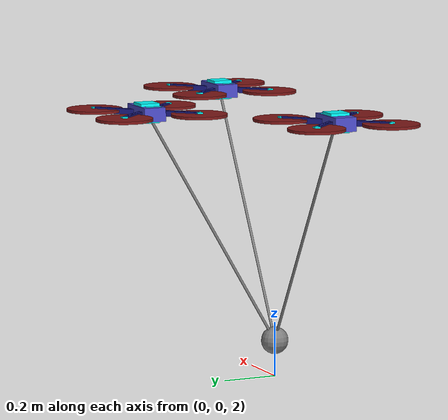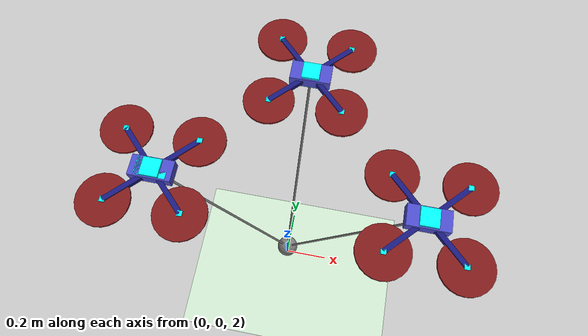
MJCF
<?xml version="1.0"?>
<mujoco model="MultiQuadPayload">
	<option	timestep="0.01" gravity="0 0 -9.81" wind="0 0 0" density="1" viscosity="1e-5" />
  <compiler angle="degree" coordinate="local" inertiafromgeom="false" />
  <visual>
    <map fogstart="3.0" fogend="5.0" force="0.1" znear="0.1" />
  </visual>
  <asset>
    <texture type="skybox" builtin="gradient" rgb1="1.0 1.0 1.0" rgb2="0.6 0.8 1.0" width="256" height="256" />
  </asset>
  <worldbody>
    <geom name="ground" type="plane" size="5.0 5.0 0.02" friction="1.0" pos="0.0 0.0 0.0" rgba="0.8 0.9 0.8 1.0" />
    <light directional="true" diffuse=".9 .9 .9" specular=".3 .3 .3" pos="0 0 4.0" dir="0 0.15 -1" />
    <body name="quadrotor0" pos="-0.5 0.0 3.0" quat="1 0 0 0">
      <inertial pos="0. 0. 0." mass="0.75" diaginertia="0.0053 0.0049 0.0098" />
      <geom name="quad0_geom" type="box" pos="0.0 0.0 0.0" quat="1 0 0 0" size="0.08 0.04 0.025"
        rgba="0.3 0.3 0.8 1.0" />
      <site name="quad0_end1" pos="0.0 0 0.0" type="sphere" size="0.01" />
      <joint name="quad0_root_joint" type="free" limited="false" pos="0.0 0.0 0.0" axis="0.0 0.0 1.0"
        range="-1.0 1.0" armature="0.0" damping="0.0" stiffness="0.0" />

      <geom name="quad0_rotor_arm_geom_0" type="box" pos="0.0 0.0 0.0" quat="0.92388 0 0 0.382683"
        size="0.2 0.01 0.01" rgba="0.1 0.1 0.5 1.0" />
      <geom name="quad0_rotor_prop_geom_0" type="cylinder" size="0.1 0.005"
        pos="0.1414213562373095 0.14142135623730953 0.0" rgba="0.5 0.1 0.1 1.0" />

      <geom name="quad0_rotor_arm_geom_1" type="box" pos="0.0 0.0 0.0" quat="0.382683 0 0 0.92388"
        size="0.2 0.01 0.01" rgba="0.1 0.1 0.5 1.0" />
      <geom name="quad0_rotor_prop_geom_1" type="cylinder" size="0.1 0.005"
        pos="-0.1414213562373095 0.14142135623730953 0.0" rgba="0.5 0.1 0.1 1.0" />

      <geom name="quad0_rotor_arm_geom_2" type="box" pos="0.0 0.0 0.0" quat="-0.382683 0 0 0.92388"
        size="0.2 0.01 0.01" rgba="0.1 0.1 0.5 1.0" />
      <geom name="quad0_rotor_prop_geom_2" type="cylinder" size="0.1 0.005"
        pos="-0.1414213562373095 -0.1414213562373095 0.0" rgba="0.5 0.1 0.1 1.0" />

      <geom name="quad0_rotor_arm_geom_3" type="box" pos="0.0 0.0 0.0" quat="-0.92388 0 0 0.382683"
        size="0.2 0.01 0.01" rgba="0.1 0.1 0.5 1.0" />
      <geom name="quad0_rotor_prop_geom_3" type="cylinder" size="0.1 0.005"
        pos="0.1414213562373095 -0.14142135623730953 0.0" rgba="0.5 0.1 0.1 1.0" />

      <site name="quad0_site0" type="box" pos="0.1414213562373095 0.14142135623730953 0.0" quat="1 0 0 0"
        size="0.01 0.01 0.01" rgba="0.0 1 1 1.0" />
      <site name="quad0_site1" type="box" pos="-0.1414213562373095 0.14142135623730953 0.0" quat="1 0 0 0"
        size="0.01 0.01 0.01" rgba="0.0 1 1 1.0" />
      <site name="quad0_site2" type="box" pos="-0.1414213562373095 -0.1414213562373095 0.0" quat="1 0 0 0"
        size="0.01 0.01 0.01" rgba="0.0 1 1 1.0" />
      <site name="quad0_site3" type="box" pos="0.14142135623730948 -0.14142135623730956 0.0"
        quat="1 0 0 0" size="0.01 0.01 0.01" rgba="0.0 1 1 1.0" />
      <site name="quad0_thrust" type="box" pos="0.0 0.0 0.0" quat="1 0 0 0"
        size="0.035 0.035 0.035" rgba="0.0 1 1 1.0" />
      <site name="quad0_Mx" type="box" pos="0.0 0.0 0.0" quat="1 0 0 0" size="0.06 0.035 0.025"
        rgba="0.0 1 1 1.0" />
      <site name="quad0_My" type="box" pos="0.0 0.0 0.0" quat="1 0 0 0" size="0.06 0.035 0.025"
        rgba="0.0 1 1 1.0" />
      <site name="quad0_Mz" type="box" pos="0.0 0.0 0.0" quat="1 0 0 0" size="0.06 0.035 0.025"
        rgba="0.0 1 1 1.0" />
    </body>
    <body name="quadrotor1" pos="0.5 0.0 3.0" quat="1 0 0 0">
      <inertial pos="0. 0. 0." mass="0.75" diaginertia="0.0053 0.0049 0.0098" />
      <geom name="quad1_geom" type="box" pos="0.0 0.0 0.0" quat="1 0 0 0" size="0.08 0.04 0.025"
        rgba="0.3 0.3 0.8 1.0" />
      <site name="quad1_end1" pos="0.0 0 0.0" type="sphere" size="0.01" />
      <joint name="quad1_root_joint" type="free" limited="false" pos="0.0 0.0 0.0" axis="0.0 0.0 1.0"
        range="-1.0 1.0" armature="0.0" damping="0.0" stiffness="0.0" />

      <geom name="quad1_rotor_arm_geom_0" type="box" pos="0.0 0.0 0.0" quat="0.92388 0 0 0.382683"
        size="0.2 0.01 0.01" rgba="0.1 0.1 0.5 1.0" />
      <geom name="quad1_rotor_prop_geom_0" type="cylinder" size="0.1 0.005"
        pos="0.1414213562373095 0.14142135623730953 0.0" rgba="0.5 0.1 0.1 1.0" />

      <geom name="quad1_rotor_arm_geom_1" type="box" pos="0.0 0.0 0.0" quat="0.382683 0 0 0.92388"
        size="0.2 0.01 0.01" rgba="0.1 0.1 0.5 1.0" />
      <geom name="quad1_rotor_prop_geom_1" type="cylinder" size="0.1 0.005"
        pos="-0.1414213562373095 0.14142135623730953 0.0" rgba="0.5 0.1 0.1 1.0" />

      <geom name="quad1_rotor_arm_geom_2" type="box" pos="0.0 0.0 0.0" quat="-0.382683 0 0 0.92388"
        size="0.2 0.01 0.01" rgba="0.1 0.1 0.5 1.0" />
      <geom name="quad1_rotor_prop_geom_2" type="cylinder" size="0.1 0.005"
        pos="-0.1414213562373095 -0.1414213562373095 0.0" rgba="0.5 0.1 0.1 1.0" />

      <geom name="quad1_rotor_arm_geom_3" type="box" pos="0.0 0.0 0.0" quat="-0.92388 0 0 0.382683"
        size="0.2 0.01 0.01" rgba="0.1 0.1 0.5 1.0" />
      <geom name="quad1_rotor_prop_geom_3" type="cylinder" size="0.1 0.005"
        pos="0.1414213562373095 -0.14142135623730953 0.0" rgba="0.5 0.1 0.1 1.0" />

      <site name="quad1_site0" type="box" pos="0.1414213562373095 0.14142135623730953 0.0" quat="1 0 0 0"
        size="0.01 0.01 0.01" rgba="0.0 1 1 1.0" />
      <site name="quad1_site1" type="box" pos="-0.1414213562373095 0.14142135623730953 0.0" quat="1 0 0 0"
        size="0.01 0.01 0.01" rgba="0.0 1 1 1.0" />
      <site name="quad1_site2" type="box" pos="-0.1414213562373095 -0.1414213562373095 0.0" quat="1 0 0 0"
        size="0.01 0.01 0.01" rgba="0.0 1 1 1.0" />
      <site name="quad1_site3" type="box" pos="0.14142135623730948 -0.14142135623730956 0.0"
        quat="1 0 0 0" size="0.01 0.01 0.01" rgba="0.0 1 1 1.0" />
      <site name="quad1_thrust" type="box" pos="0.0 0.0 0.0" quat="1 0 0 0"
        size="0.035 0.035 0.035" rgba="0.0 1 1 1.0" />
      <site name="quad1_Mx" type="box" pos="0.0 0.0 0.0" quat="1 0 0 0" size="0.06 0.035 0.025"
        rgba="0.0 1 1 1.0" />
      <site name="quad1_My" type="box" pos="0.0 0.0 0.0" quat="1 0 0 0" size="0.06 0.035 0.025"
        rgba="0.0 1 1 1.0" />
      <site name="quad1_Mz" type="box" pos="0.0 0.0 0.0" quat="1 0 0 0" size="0.06 0.035 0.025"
        rgba="0.0 1 1 1.0" />
    </body>
    <body name="quadrotor2" pos="0.0 0.5 3.0" quat="1 0 0 0">
      <inertial pos="0. 0. 0." mass="0.75" diaginertia="0.0053 0.0049 0.0098" />
      <geom name="quad2_geom" type="box" pos="0.0 0.0 0.0" quat="1 0 0 0" size="0.08 0.04 0.025"
        rgba="0.3 0.3 0.8 1.0" />
      <site name="quad2_end1" pos="0.0 0 0.0" type="sphere" size="0.01" />
      <joint name="quad2_root_joint" type="free" limited="false" pos="0.0 0.0 0.0" axis="0.0 0.0 1.0"
        range="-1.0 1.0" armature="0.0" damping="0.0" stiffness="0.0" />

      <geom name="quad2_rotor_arm_geom_0" type="box" pos="0.0 0.0 0.0" quat="0.92388 0 0 0.382683"
        size="0.2 0.01 0.01" rgba="0.1 0.1 0.5 1.0" />
      <geom name="quad2_rotor_prop_geom_0" type="cylinder" size="0.1 0.005"
        pos="0.1414213562373095 0.14142135623730953 0.0" rgba="0.5 0.1 0.1 1.0" />

      <geom name="quad2_rotor_arm_geom_1" type="box" pos="0.0 0.0 0.0" quat="0.382683 0 0 0.92388"
        size="0.2 0.01 0.01" rgba="0.1 0.1 0.5 1.0" />
      <geom name="quad2_rotor_prop_geom_1" type="cylinder" size="0.1 0.005"
        pos="-0.1414213562373095 0.14142135623730953 0.0" rgba="0.5 0.1 0.1 1.0" />

      <geom name="quad2_rotor_arm_geom_2" type="box" pos="0.0 0.0 0.0" quat="-0.382683 0 0 0.92388"
        size="0.2 0.01 0.01" rgba="0.1 0.1 0.5 1.0" />
      <geom name="quad2_rotor_prop_geom_2" type="cylinder" size="0.1 0.005"
        pos="-0.1414213562373095 -0.1414213562373095 0.0" rgba="0.5 0.1 0.1 1.0" />

      <geom name="quad2_rotor_arm_geom_3" type="box" pos="0.0 0.0 0.0" quat="-0.92388 0 0 0.382683"
        size="0.2 0.01 0.01" rgba="0.1 0.1 0.5 1.0" />
      <geom name="quad2_rotor_prop_geom_3" type="cylinder" size="0.1 0.005"
        pos="0.1414213562373095 -0.14142135623730953 0.0" rgba="0.5 0.1 0.1 1.0" />

      <site name="quad2_site0" type="box" pos="0.1414213562373095 0.14142135623730953 0.0" quat="1 0 0 0"
        size="0.01 0.01 0.01" rgba="0.0 1 1 1.0" />
      <site name="quad2_site1" type="box" pos="-0.1414213562373095 0.14142135623730953 0.0" quat="1 0 0 0"
        size="0.01 0.01 0.01" rgba="0.0 1 1 1.0" />
      <site name="quad2_site2" type="box" pos="-0.1414213562373095 -0.1414213562373095 0.0" quat="1 0 0 0"
        size="0.01 0.01 0.01" rgba="0.0 1 1 1.0" />
      <site name="quad2_site3" type="box" pos="0.14142135623730948 -0.14142135623730956 0.0"
        quat="1 0 0 0" size="0.01 0.01 0.01" rgba="0.0 1 1 1.0" />
      <site name="quad2_thrust" type="box" pos="0.0 0.0 0.0" quat="1 0 0 0"
        size="0.035 0.035 0.035" rgba="0.0 1 1 1.0" />
      <site name="quad2_Mx" type="box" pos="0.0 0.0 0.0" quat="1 0 0 0" size="0.06 0.035 0.025"
        rgba="0.0 1 1 1.0" />
      <site name="quad2_My" type="box" pos="0.0 0.0 0.0" quat="1 0 0 0" size="0.06 0.035 0.025"
        rgba="0.0 1 1 1.0" />
      <site name="quad2_Mz" type="box" pos="0.0 0.0 0.0" quat="1 0 0 0" size="0.06 0.035 0.025"
        rgba="0.0 1 1 1.0" />
    </body>
    <body name="payload" pos="0.0 0.0 2.134" quat="1 0 0 0">
      <inertial pos="0. 0. 0." mass="0.15" diaginertia="0.00015 0.00015 0.00015" />
      <geom type="sphere" pos="0. 0. 0.0" size="0.05" />
      <site name="end2" pos="0.0 0 0.0" type="sphere" size="0.01" />
      <joint type="free" />
    </body>
  </worldbody>
  <actuator>
    <motor ctrllimited="true"
      site="quad0_thrust" ctrlrange="0.0 40.0" gear="0.0 0.0 1.0 0.0 0.0 0.0" />
    <motor
      ctrllimited="true" site="quad0_Mx" ctrlrange="-3.0 3.0" gear="0.0 0.0 0.0 1.0 0.0 0.0" />
    <motor
      ctrllimited="true" site="quad0_My" ctrlrange="-3.0 3.0" gear="0.0 0.0 0.0 0.0 1.0 0.0" />
    <motor
      ctrllimited="true" site="quad0_Mz" ctrlrange="-3.0 3.0" gear="0.0 0.0 0.0 0.0 0.0 1.0" />
    <motor ctrllimited="true"
      site="quad1_thrust" ctrlrange="0.0 40.0" gear="0.0 0.0 1.0 0.0 0.0 0.0" />
    <motor
      ctrllimited="true" site="quad1_Mx" ctrlrange="-3.0 3.0" gear="0.0 0.0 0.0 1.0 0.0 0.0" />
    <motor
      ctrllimited="true" site="quad1_My" ctrlrange="-3.0 3.0" gear="0.0 0.0 0.0 0.0 1.0 0.0" />
    <motor
      ctrllimited="true" site="quad1_Mz" ctrlrange="-3.0 3.0" gear="0.0 0.0 0.0 0.0 0.0 1.0" />
    <motor ctrllimited="true"
      site="quad2_thrust" ctrlrange="0.0 40.0" gear="0.0 0.0 1.0 0.0 0.0 0.0" />
    <motor
      ctrllimited="true" site="quad2_Mx" ctrlrange="-3.0 3.0" gear="0.0 0.0 0.0 1.0 0.0 0.0" />
    <motor
      ctrllimited="true" site="quad2_My" ctrlrange="-3.0 3.0" gear="0.0 0.0 0.0 0.0 1.0 0.0" />
    <motor
      ctrllimited="true" site="quad2_Mz" ctrlrange="-3.0 3.0" gear="0.0 0.0 0.0 0.0 0.0 1.0" />
  </actuator>
   <tendon>
      <spatial limited="true" range="0.0 1.0" width="0.005" damping="0.0" stiffness="0.0">
         <site site="quad0_end1"/>
         <site site="end2"/>
      </spatial>
      <spatial limited="true" range="0.0 1.0" width="0.005" damping="0.0" stiffness="0.0">
         <site site="quad1_end1"/>
         <site site="end2"/>
      </spatial>
      <spatial limited="true" range="0.0 1.0" width="0.005" damping="0.0" stiffness="0.0">
         <site site="quad2_end1"/>
         <site site="end2"/>
      </spatial>
   </tendon>
  <sensor>
    <force site="quad0_end1"/>
    <force site="quad1_end1"/>
    <force site="quad2_end1"/>
  </sensor>
</mujoco>
